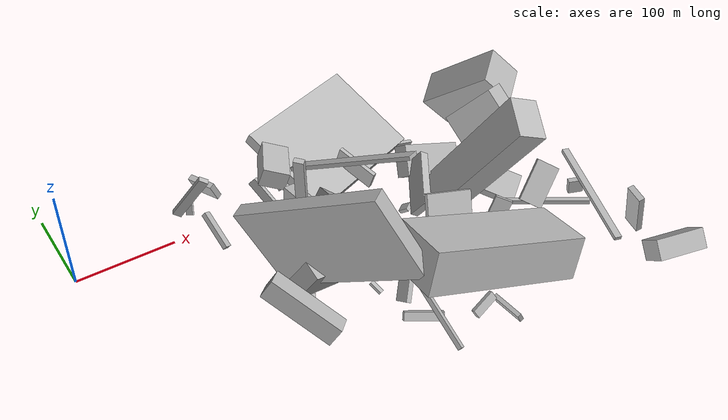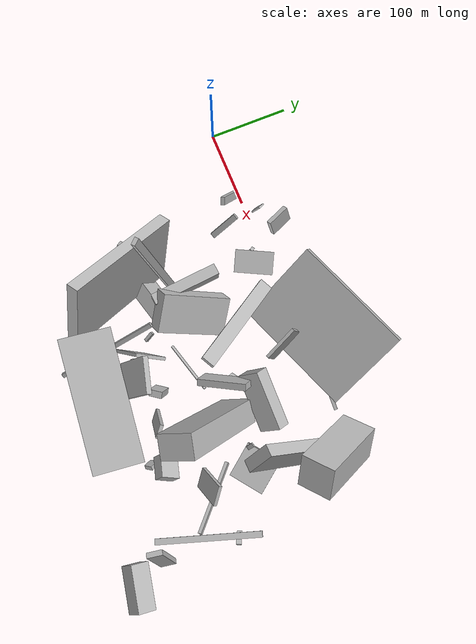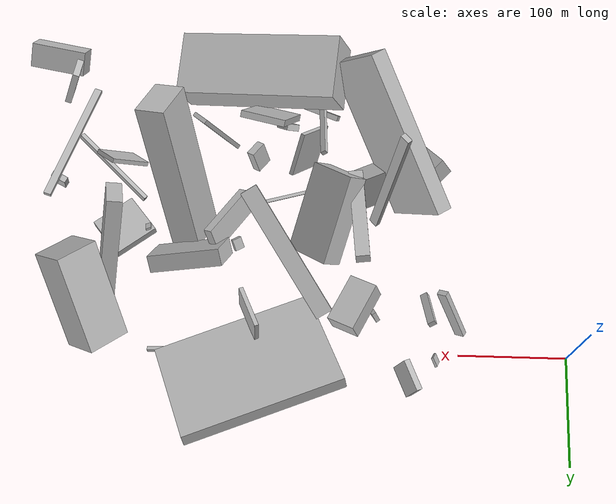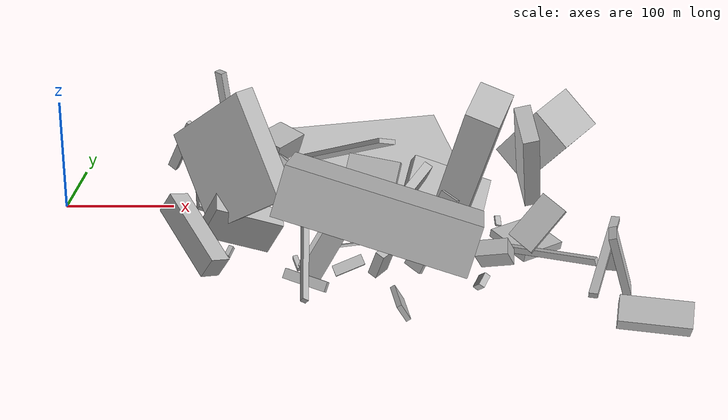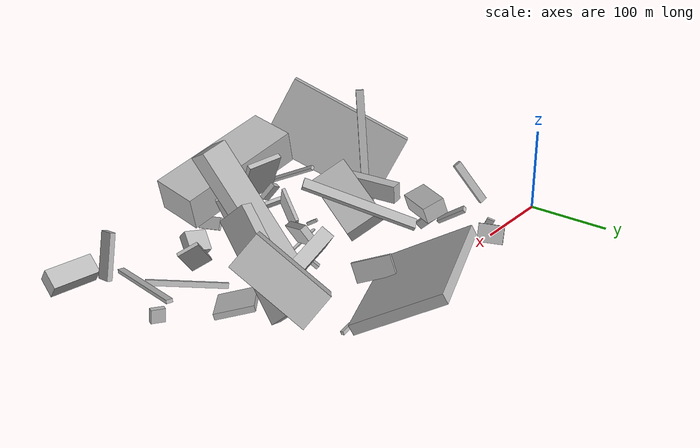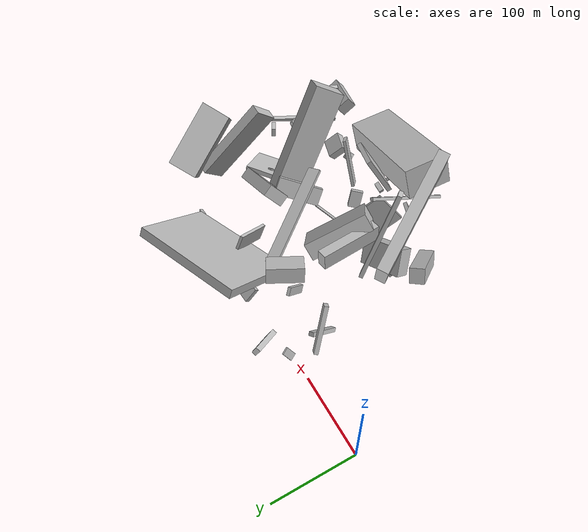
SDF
<sdf version="1.6">
 <world name="default">
  <model name="building_1">
   <static>0</static>
   <pose>241.0916509240941 -126.79172080091843 47.20947998207029 0.743622857691419 0.8195258798122124 -2.8497544787731073</pose>
   <link name="link">
    <gravity>0</gravity>
    <pose>0 0 22.5 0 0 0</pose>
    <collision name="collision"><geometry><box><size>22 82 45</size></box></geometry></collision>
    <visual name="visual">
     <cast_shadows>0</cast_shadows>
     <geometry><box><size>22 82 45</size></box></geometry>
     <material>
      <script>
       <uri>model://HANNAS_wall/materials/scripts</uri>
       <uri>model://HANNAS_wall/materials/textures</uri>
       <name>vrc/HANNAS_wall</name>
      </script>
     </material>
    </visual>
   </link>
  </model>
  <model name="building_4">
   <static>0</static>
   <pose>358.4666775041412 -253.40052799745908 62.26033274355591 1.2945197006456552 -0.1387699524928964 -1.6644033676453922</pose>
   <link name="link">
    <gravity>0</gravity>
    <pose>0 0 75.0 0 0 0</pose>
    <collision name="collision"><geometry><box><size>57 40 150</size></box></geometry></collision>
    <visual name="visual">
     <cast_shadows>0</cast_shadows>
     <geometry><box><size>57 40 150</size></box></geometry>
     <material>
      <script>
       <uri>model://HANNAS_wall/materials/scripts</uri>
       <uri>model://HANNAS_wall/materials/textures</uri>
       <name>vrc/HANNAS_wall</name>
      </script>
     </material>
    </visual>
   </link>
  </model>
  <model name="building_11">
   <static>0</static>
   <pose>401.8039499982133 -173.39935292125682 31.49054169809454 -0.6019209860752779 0.462571180728749 -0.6685917153624122</pose>
   <link name="link">
    <gravity>0</gravity>
    <pose>0 0 21.5 0 0 0</pose>
    <collision name="collision"><geometry><box><size>24 4 43</size></box></geometry></collision>
    <visual name="visual">
     <cast_shadows>0</cast_shadows>
     <geometry><box><size>24 4 43</size></box></geometry>
     <material>
      <script>
       <uri>model://HANNAS_wall/materials/scripts</uri>
       <uri>model://HANNAS_wall/materials/textures</uri>
       <name>vrc/HANNAS_wall</name>
      </script>
     </material>
    </visual>
   </link>
  </model>
  <model name="building_17">
   <static>0</static>
   <pose>232.2137951948754 -227.86231759600875 21.878663982750652 -0.32473154866761295 1.0768451253514768 -2.2833988587806293</pose>
   <link name="link">
    <gravity>0</gravity>
    <pose>0 0 2.5 0 0 0</pose>
    <collision name="collision"><geometry><box><size>8 36 5</size></box></geometry></collision>
    <visual name="visual">
     <cast_shadows>0</cast_shadows>
     <geometry><box><size>8 36 5</size></box></geometry>
     <material>
      <script>
       <uri>model://HANNAS_wall/materials/scripts</uri>
       <uri>model://HANNAS_wall/materials/textures</uri>
       <name>vrc/HANNAS_wall</name>
      </script>
     </material>
    </visual>
   </link>
  </model>
  <model name="building_18">
   <static>0</static>
   <pose>166.54839110304812 -152.57960636875353 14.710386828490366 0.1613941632235688 -0.7294529193206175 1.019425712184774</pose>
   <link name="link">
    <gravity>0</gravity>
    <pose>0 0 2.0 0 0 0</pose>
    <collision name="collision"><geometry><box><size>9 4 4</size></box></geometry></collision>
    <visual name="visual">
     <cast_shadows>0</cast_shadows>
     <geometry><box><size>9 4 4</size></box></geometry>
     <material>
      <script>
       <uri>model://HANNAS_wall/materials/scripts</uri>
       <uri>model://HANNAS_wall/materials/textures</uri>
       <name>vrc/HANNAS_wall</name>
      </script>
     </material>
    </visual>
   </link>
  </model>
  <model name="building_20">
   <static>0</static>
   <pose>172.75411120918056 -133.00806294383324 93.17697028687269 2.877991009944373 -1.365799307123116 -2.153895048102749</pose>
   <link name="link">
    <gravity>0</gravity>
    <pose>0 0 2.5 0 0 0</pose>
    <collision name="collision"><geometry><box><size>150 9 5</size></box></geometry></collision>
    <visual name="visual">
     <cast_shadows>0</cast_shadows>
     <geometry><box><size>150 9 5</size></box></geometry>
     <material>
      <script>
       <uri>model://HANNAS_wall/materials/scripts</uri>
       <uri>model://HANNAS_wall/materials/textures</uri>
       <name>vrc/HANNAS_wall</name>
      </script>
     </material>
    </visual>
   </link>
  </model>
  <model name="building_23">
   <static>0</static>
   <pose>222.28202996532096 -3.8956743131773095 34.753353518337704 1.5868055997190684 -0.5030032479727464 1.937392350581111</pose>
   <link name="link">
    <gravity>0</gravity>
    <pose>0 0 75.0 0 0 0</pose>
    <collision name="collision"><geometry><box><size>106 12 150</size></box></geometry></collision>
    <visual name="visual">
     <cast_shadows>0</cast_shadows>
     <geometry><box><size>106 12 150</size></box></geometry>
     <material>
      <script>
       <uri>model://HANNAS_wall/materials/scripts</uri>
       <uri>model://HANNAS_wall/materials/textures</uri>
       <name>vrc/HANNAS_wall</name>
      </script>
     </material>
    </visual>
   </link>
  </model>
  <model name="building_25">
   <static>0</static>
   <pose>254.02795782314413 -177.03393380565223 45.751858097996426 2.8392088810995095 -0.7404619568072064 -1.9102910947475058</pose>
   <link name="link">
    <gravity>0</gravity>
    <pose>0 0 22.5 0 0 0</pose>
    <collision name="collision"><geometry><box><size>42 4 45</size></box></geometry></collision>
    <visual name="visual">
     <cast_shadows>0</cast_shadows>
     <geometry><box><size>42 4 45</size></box></geometry>
     <material>
      <script>
       <uri>model://HANNAS_wall/materials/scripts</uri>
       <uri>model://HANNAS_wall/materials/textures</uri>
       <name>vrc/HANNAS_wall</name>
      </script>
     </material>
    </visual>
   </link>
  </model>
  <model name="building_30">
   <static>0</static>
   <pose>352.5540884524679 -161.41338525035385 78.66194120069774 -0.6372867172122165 -0.9880449328464691 -1.258235981223565</pose>
   <link name="link">
    <gravity>0</gravity>
    <pose>0 0 19.5 0 0 0</pose>
    <collision name="collision"><geometry><box><size>150 28 39</size></box></geometry></collision>
    <visual name="visual">
     <cast_shadows>0</cast_shadows>
     <geometry><box><size>150 28 39</size></box></geometry>
     <material>
      <script>
       <uri>model://HANNAS_wall/materials/scripts</uri>
       <uri>model://HANNAS_wall/materials/textures</uri>
       <name>vrc/HANNAS_wall</name>
      </script>
     </material>
    </visual>
   </link>
  </model>
  <model name="building_32">
   <static>0</static>
   <pose>420.95966662323923 -84.94178865922247 60.43215980542375 0.8211074675303445 0.20617302497976223 -3.1090380642331135</pose>
   <link name="link">
    <gravity>0</gravity>
    <pose>0 0 17.5 0 0 0</pose>
    <collision name="collision"><geometry><box><size>14 115 35</size></box></geometry></collision>
    <visual name="visual">
     <cast_shadows>0</cast_shadows>
     <geometry><box><size>14 115 35</size></box></geometry>
     <material>
      <script>
       <uri>model://HANNAS_wall/materials/scripts</uri>
       <uri>model://HANNAS_wall/materials/textures</uri>
       <name>vrc/HANNAS_wall</name>
      </script>
     </material>
    </visual>
   </link>
  </model>
  <model name="building_36">
   <static>0</static>
   <pose>344.7723852525848 -85.82009632368492 34.98490691655639 0.6406887320542455 -0.34330202802324283 -3.116895478110348</pose>
   <link name="link">
    <gravity>0</gravity>
    <pose>0 0 15.5 0 0 0</pose>
    <collision name="collision"><geometry><box><size>70 16 31</size></box></geometry></collision>
    <visual name="visual">
     <cast_shadows>0</cast_shadows>
     <geometry><box><size>70 16 31</size></box></geometry>
     <material>
      <script>
       <uri>model://HANNAS_wall/materials/scripts</uri>
       <uri>model://HANNAS_wall/materials/textures</uri>
       <name>vrc/HANNAS_wall</name>
      </script>
     </material>
    </visual>
   </link>
  </model>
  <model name="building_37">
   <static>0</static>
   <pose>147.36967346004366 -175.4206822387052 39.87576908829978 -1.318118748198189 -0.5494954403162317 2.2220988633181395</pose>
   <link name="link">
    <gravity>0</gravity>
    <pose>0 0 9.0 0 0 0</pose>
    <collision name="collision"><geometry><box><size>72 19 18</size></box></geometry></collision>
    <visual name="visual">
     <cast_shadows>0</cast_shadows>
     <geometry><box><size>72 19 18</size></box></geometry>
     <material>
      <script>
       <uri>model://HANNAS_wall/materials/scripts</uri>
       <uri>model://HANNAS_wall/materials/textures</uri>
       <name>vrc/HANNAS_wall</name>
      </script>
     </material>
    </visual>
   </link>
  </model>
  <model name="building_39">
   <static>0</static>
   <pose>306.875966251606 -257.0847921308212 10.31073312570015 0.15388736754576282 -0.5339724337595798 0.07219591271736593</pose>
   <link name="link">
    <gravity>0</gravity>
    <pose>0 0 7.5 0 0 0</pose>
    <collision name="collision"><geometry><box><size>4 29 15</size></box></geometry></collision>
    <visual name="visual">
     <cast_shadows>0</cast_shadows>
     <geometry><box><size>4 29 15</size></box></geometry>
     <material>
      <script>
       <uri>model://HANNAS_wall/materials/scripts</uri>
       <uri>model://HANNAS_wall/materials/textures</uri>
       <name>vrc/HANNAS_wall</name>
      </script>
     </material>
    </visual>
   </link>
  </model>
  <model name="building_41">
   <static>0</static>
   <pose>278.8359966370547 -197.91882227467732 79.99541068362628 1.0383896606435579 0.10825217130933673 -0.26533853469157304</pose>
   <link name="link">
    <gravity>0</gravity>
    <pose>0 0 3.0 0 0 0</pose>
    <collision name="collision"><geometry><box><size>41 60 6</size></box></geometry></collision>
    <visual name="visual">
     <cast_shadows>0</cast_shadows>
     <geometry><box><size>41 60 6</size></box></geometry>
     <material>
      <script>
       <uri>model://HANNAS_wall/materials/scripts</uri>
       <uri>model://HANNAS_wall/materials/textures</uri>
       <name>vrc/HANNAS_wall</name>
      </script>
     </material>
    </visual>
   </link>
  </model>
  <model name="building_44">
   <static>0</static>
   <pose>301.9351442187228 -46.75546142897778 20.392710485427443 1.1989342795985283 0.14700428645064403 -2.802006148436545</pose>
   <link name="link">
    <gravity>0</gravity>
    <pose>0 0 22.5 0 0 0</pose>
    <collision name="collision"><geometry><box><size>4 23 45</size></box></geometry></collision>
    <visual name="visual">
     <cast_shadows>0</cast_shadows>
     <geometry><box><size>4 23 45</size></box></geometry>
     <material>
      <script>
       <uri>model://HANNAS_wall/materials/scripts</uri>
       <uri>model://HANNAS_wall/materials/textures</uri>
       <name>vrc/HANNAS_wall</name>
      </script>
     </material>
    </visual>
   </link>
  </model>
  <model name="building_50">
   <static>0</static>
   <pose>464.64126286155783 -244.9095397115728 44.515205050815545 1.2922818838705907 -0.17346900817525696 1.4109254514971754</pose>
   <link name="link">
    <gravity>0</gravity>
    <pose>0 0 3.0 0 0 0</pose>
    <collision name="collision"><geometry><box><size>18 51 6</size></box></geometry></collision>
    <visual name="visual">
     <cast_shadows>0</cast_shadows>
     <geometry><box><size>18 51 6</size></box></geometry>
     <material>
      <script>
       <uri>model://HANNAS_wall/materials/scripts</uri>
       <uri>model://HANNAS_wall/materials/textures</uri>
       <name>vrc/HANNAS_wall</name>
      </script>
     </material>
    </visual>
   </link>
  </model>
  <model name="building_51">
   <static>0</static>
   <pose>429.20433102627374 -167.71950130565415 21.08821913895362 1.8471695355706919 -0.13456763340078798 -0.7459247431739277</pose>
   <link name="link">
    <gravity>0</gravity>
    <pose>0 0 2.0 0 0 0</pose>
    <collision name="collision"><geometry><box><size>86 6 4</size></box></geometry></collision>
    <visual name="visual">
     <cast_shadows>0</cast_shadows>
     <geometry><box><size>86 6 4</size></box></geometry>
     <material>
      <script>
       <uri>model://HANNAS_wall/materials/scripts</uri>
       <uri>model://HANNAS_wall/materials/textures</uri>
       <name>vrc/HANNAS_wall</name>
      </script>
     </material>
    </visual>
   </link>
  </model>
  <model name="building_53">
   <static>0</static>
   <pose>203.32543652585144 -145.4382600590696 30.97249290845363 0.9346104282706533 -0.9587643377372761 -0.7359608823115944</pose>
   <link name="link">
    <gravity>0</gravity>
    <pose>0 0 29.0 0 0 0</pose>
    <collision name="collision"><geometry><box><size>34 18 58</size></box></geometry></collision>
    <visual name="visual">
     <cast_shadows>0</cast_shadows>
     <geometry><box><size>34 18 58</size></box></geometry>
     <material>
      <script>
       <uri>model://HANNAS_wall/materials/scripts</uri>
       <uri>model://HANNAS_wall/materials/textures</uri>
       <name>vrc/HANNAS_wall</name>
      </script>
     </material>
    </visual>
   </link>
  </model>
  <model name="building_54">
   <static>0</static>
   <pose>450.9887812455356 -35.7184766322068 63.605488287098986 0.5012935734411316 -0.6474163289088832 -1.2074735683968052</pose>
   <link name="link">
    <gravity>0</gravity>
    <pose>0 0 20.0 0 0 0</pose>
    <collision name="collision"><geometry><box><size>90 39 40</size></box></geometry></collision>
    <visual name="visual">
     <cast_shadows>0</cast_shadows>
     <geometry><box><size>90 39 40</size></box></geometry>
     <material>
      <script>
       <uri>model://HANNAS_wall/materials/scripts</uri>
       <uri>model://HANNAS_wall/materials/textures</uri>
       <name>vrc/HANNAS_wall</name>
      </script>
     </material>
    </visual>
   </link>
  </model>
  <model name="building_58">
   <static>0</static>
   <pose>390.155040526304 -209.44246681990393 39.19762140845673 1.826163952804419 -0.7236364658055908 -2.0004751579557314</pose>
   <link name="link">
    <gravity>0</gravity>
    <pose>0 0 13.0 0 0 0</pose>
    <collision name="collision"><geometry><box><size>24 13 26</size></box></geometry></collision>
    <visual name="visual">
     <cast_shadows>0</cast_shadows>
     <geometry><box><size>24 13 26</size></box></geometry>
     <material>
      <script>
       <uri>model://HANNAS_wall/materials/scripts</uri>
       <uri>model://HANNAS_wall/materials/textures</uri>
       <name>vrc/HANNAS_wall</name>
      </script>
     </material>
    </visual>
   </link>
  </model>
  <model name="building_59">
   <static>0</static>
   <pose>165.554528659066 -180.96758055557927 98.78134703752377 1.2275736127695838 -1.0695009115556346 2.4516035722868086</pose>
   <link name="link">
    <gravity>0</gravity>
    <pose>0 0 7.0 0 0 0</pose>
    <collision name="collision"><geometry><box><size>86 150 14</size></box></geometry></collision>
    <visual name="visual">
     <cast_shadows>0</cast_shadows>
     <geometry><box><size>86 150 14</size></box></geometry>
     <material>
      <script>
       <uri>model://HANNAS_wall/materials/scripts</uri>
       <uri>model://HANNAS_wall/materials/textures</uri>
       <name>vrc/HANNAS_wall</name>
      </script>
     </material>
    </visual>
   </link>
  </model>
  <model name="building_62">
   <static>0</static>
   <pose>274.96807584200036 -265.9943412545197 54.83317999680026 -1.977334174896607 0.5031958168412397 1.5465730959121566</pose>
   <link name="link">
    <gravity>0</gravity>
    <pose>0 0 11.5 0 0 0</pose>
    <collision name="collision"><geometry><box><size>4 8 23</size></box></geometry></collision>
    <visual name="visual">
     <cast_shadows>0</cast_shadows>
     <geometry><box><size>4 8 23</size></box></geometry>
     <material>
      <script>
       <uri>model://HANNAS_wall/materials/scripts</uri>
       <uri>model://HANNAS_wall/materials/textures</uri>
       <name>vrc/HANNAS_wall</name>
      </script>
     </material>
    </visual>
   </link>
  </model>
  <model name="building_64">
   <static>0</static>
   <pose>224.69186396211842 -176.15402441559422 9.813193448002359 -1.0438552306481101 -0.14515546488405412 0.3041412732127667</pose>
   <link name="link">
    <gravity>0</gravity>
    <pose>0 0 6.5 0 0 0</pose>
    <collision name="collision"><geometry><box><size>4 4 13</size></box></geometry></collision>
    <visual name="visual">
     <cast_shadows>0</cast_shadows>
     <geometry><box><size>4 4 13</size></box></geometry>
     <material>
      <script>
       <uri>model://HANNAS_wall/materials/scripts</uri>
       <uri>model://HANNAS_wall/materials/textures</uri>
       <name>vrc/HANNAS_wall</name>
      </script>
     </material>
    </visual>
   </link>
  </model>
  <model name="building_67">
   <static>0</static>
   <pose>228.79883241764915 -222.56830623551357 58.71533889671281 2.186517972011142 -0.4679932095062374 1.5947183331059671</pose>
   <link name="link">
    <gravity>0</gravity>
    <pose>0 0 2.5 0 0 0</pose>
    <collision name="collision"><geometry><box><size>131 4 5</size></box></geometry></collision>
    <visual name="visual">
     <cast_shadows>0</cast_shadows>
     <geometry><box><size>131 4 5</size></box></geometry>
     <material>
      <script>
       <uri>model://HANNAS_wall/materials/scripts</uri>
       <uri>model://HANNAS_wall/materials/textures</uri>
       <name>vrc/HANNAS_wall</name>
      </script>
     </material>
    </visual>
   </link>
  </model>
  <model name="building_71">
   <static>0</static>
   <pose>330.1968036988453 -195.47994085437057 49.55689497154879 0.8915380532162503 -1.1391335186939078 0.006992334502852527</pose>
   <link name="link">
    <gravity>0</gravity>
    <pose>0 0 2.0 0 0 0</pose>
    <collision name="collision"><geometry><box><size>67 16 4</size></box></geometry></collision>
    <visual name="visual">
     <cast_shadows>0</cast_shadows>
     <geometry><box><size>67 16 4</size></box></geometry>
     <material>
      <script>
       <uri>model://HANNAS_wall/materials/scripts</uri>
       <uri>model://HANNAS_wall/materials/textures</uri>
       <name>vrc/HANNAS_wall</name>
      </script>
     </material>
    </visual>
   </link>
  </model>
  <model name="building_74">
   <static>0</static>
   <pose>188.69140222137554 -21.513581369356828 74.10458720812272 1.9101945912181952 -0.021617666772504103 1.0986745783191918</pose>
   <link name="link">
    <gravity>0</gravity>
    <pose>0 0 13.0 0 0 0</pose>
    <collision name="collision"><geometry><box><size>44 19 26</size></box></geometry></collision>
    <visual name="visual">
     <cast_shadows>0</cast_shadows>
     <geometry><box><size>44 19 26</size></box></geometry>
     <material>
      <script>
       <uri>model://HANNAS_wall/materials/scripts</uri>
       <uri>model://HANNAS_wall/materials/textures</uri>
       <name>vrc/HANNAS_wall</name>
      </script>
     </material>
    </visual>
   </link>
  </model>
  <model name="building_77">
   <static>0</static>
   <pose>253.69636535418607 -75.96792483671798 80.07160272130028 2.1571539125195676 -1.128843047515271 1.5498244398997585</pose>
   <link name="link">
    <gravity>0</gravity>
    <pose>0 0 8.0 0 0 0</pose>
    <collision name="collision"><geometry><box><size>4 130 16</size></box></geometry></collision>
    <visual name="visual">
     <cast_shadows>0</cast_shadows>
     <geometry><box><size>4 130 16</size></box></geometry>
     <material>
      <script>
       <uri>model://HANNAS_wall/materials/scripts</uri>
       <uri>model://HANNAS_wall/materials/textures</uri>
       <name>vrc/HANNAS_wall</name>
      </script>
     </material>
    </visual>
   </link>
  </model>
  <model name="building_79">
   <static>0</static>
   <pose>354.519049786812 4.133434508623265 11.349593220102234 -0.24568578435269803 -0.21486541041510893 3.123799538004072</pose>
   <link name="link">
    <gravity>0</gravity>
    <pose>0 0 2.0 0 0 0</pose>
    <collision name="collision"><geometry><box><size>65 4 4</size></box></geometry></collision>
    <visual name="visual">
     <cast_shadows>0</cast_shadows>
     <geometry><box><size>65 4 4</size></box></geometry>
     <material>
      <script>
       <uri>model://HANNAS_wall/materials/scripts</uri>
       <uri>model://HANNAS_wall/materials/textures</uri>
       <name>vrc/HANNAS_wall</name>
      </script>
     </material>
    </visual>
   </link>
  </model>
  <model name="building_81">
   <static>0</static>
   <pose>397.29222194222456 -125.28781472322586 11.136324886141804 -1.410290852296442 -1.3288523689142844 -1.0780219402067424</pose>
   <link name="link">
    <gravity>0</gravity>
    <pose>0 0 21.5 0 0 0</pose>
    <collision name="collision"><geometry><box><size>7 43 43</size></box></geometry></collision>
    <visual name="visual">
     <cast_shadows>0</cast_shadows>
     <geometry><box><size>7 43 43</size></box></geometry>
     <material>
      <script>
       <uri>model://HANNAS_wall/materials/scripts</uri>
       <uri>model://HANNAS_wall/materials/textures</uri>
       <name>vrc/HANNAS_wall</name>
      </script>
     </material>
    </visual>
   </link>
  </model>
  <model name="building_85">
   <static>0</static>
   <pose>267.5312618815411 -204.6588740034895 50.622454474634736 0.5197828075598211 0.48116920991888074 -3.0189763221632675</pose>
   <link name="link">
    <gravity>0</gravity>
    <pose>0 0 10.5 0 0 0</pose>
    <collision name="collision"><geometry><box><size>12 6 21</size></box></geometry></collision>
    <visual name="visual">
     <cast_shadows>0</cast_shadows>
     <geometry><box><size>12 6 21</size></box></geometry>
     <material>
      <script>
       <uri>model://HANNAS_wall/materials/scripts</uri>
       <uri>model://HANNAS_wall/materials/textures</uri>
       <name>vrc/HANNAS_wall</name>
      </script>
     </material>
    </visual>
   </link>
  </model>
  <model name="building_96">
   <static>0</static>
   <pose>182.93923392947974 -32.35481669966884 45.75785935847543 -1.7793750069859262 -0.8241929075436488 -0.855376088079651</pose>
   <link name="link">
    <gravity>0</gravity>
    <pose>0 0 2.0 0 0 0</pose>
    <collision name="collision"><geometry><box><size>10 32 4</size></box></geometry></collision>
    <visual name="visual">
     <cast_shadows>0</cast_shadows>
     <geometry><box><size>10 32 4</size></box></geometry>
     <material>
      <script>
       <uri>model://HANNAS_wall/materials/scripts</uri>
       <uri>model://HANNAS_wall/materials/textures</uri>
       <name>vrc/HANNAS_wall</name>
      </script>
     </material>
    </visual>
   </link>
  </model>
  <model name="building_99">
   <static>0</static>
   <pose>461.91031444845083 -277.83155599730645 19.20641882542729 1.6180857046291393 -0.8935508773130877 1.340458647035134</pose>
   <link name="link">
    <gravity>0</gravity>
    <pose>0 0 26.5 0 0 0</pose>
    <collision name="collision"><geometry><box><size>20 23 53</size></box></geometry></collision>
    <visual name="visual">
     <cast_shadows>0</cast_shadows>
     <geometry><box><size>20 23 53</size></box></geometry>
     <material>
      <script>
       <uri>model://HANNAS_wall/materials/scripts</uri>
       <uri>model://HANNAS_wall/materials/textures</uri>
       <name>vrc/HANNAS_wall</name>
      </script>
     </material>
    </visual>
   </link>
  </model>
  <model name="building_100">
   <static>0</static>
   <pose>466.6771054952365 -191.37443637404073 30.803758158145484 -3.1406110096169573 -0.1610438919474329 1.2629160216451212</pose>
   <link name="link">
    <gravity>0</gravity>
    <pose>0 0 2.0 0 0 0</pose>
    <collision name="collision"><geometry><box><size>122 7 4</size></box></geometry></collision>
    <visual name="visual">
     <cast_shadows>0</cast_shadows>
     <geometry><box><size>122 7 4</size></box></geometry>
     <material>
      <script>
       <uri>model://HANNAS_wall/materials/scripts</uri>
       <uri>model://HANNAS_wall/materials/textures</uri>
       <name>vrc/HANNAS_wall</name>
      </script>
     </material>
    </visual>
   </link>
  </model>
  <model name="building_101">
   <static>0</static>
   <pose>131.40087946284243 -37.266396333162916 29.375708351286473 2.49271989973548 -0.40943463815202186 -2.7041572137802077</pose>
   <link name="link">
    <gravity>0</gravity>
    <pose>0 0 2.5 0 0 0</pose>
    <collision name="collision"><geometry><box><size>7 39 5</size></box></geometry></collision>
    <visual name="visual">
     <cast_shadows>0</cast_shadows>
     <geometry><box><size>7 39 5</size></box></geometry>
     <material>
      <script>
       <uri>model://HANNAS_wall/materials/scripts</uri>
       <uri>model://HANNAS_wall/materials/textures</uri>
       <name>vrc/HANNAS_wall</name>
      </script>
     </material>
    </visual>
   </link>
  </model>
  <model name="building_104">
   <static>0</static>
   <pose>478.73251908755 -161.722172815962 11.312580706321766 -1.5418710382668763 -0.09228406875839018 -0.4582786251517459</pose>
   <link name="link">
    <gravity>0</gravity>
    <pose>0 0 3.0 0 0 0</pose>
    <collision name="collision"><geometry><box><size>15 15 6</size></box></geometry></collision>
    <visual name="visual">
     <cast_shadows>0</cast_shadows>
     <geometry><box><size>15 15 6</size></box></geometry>
     <material>
      <script>
       <uri>model://HANNAS_wall/materials/scripts</uri>
       <uri>model://HANNAS_wall/materials/textures</uri>
       <name>vrc/HANNAS_wall</name>
      </script>
     </material>
    </visual>
   </link>
  </model>
  <model name="building_106">
   <static>0</static>
   <pose>121.96279344000705 6.738802782472602 20.200740787860898 0.3629852221214459 -0.39247946438003034 -2.8183724062293494</pose>
   <link name="link">
    <gravity>0</gravity>
    <pose>0 0 8.5 0 0 0</pose>
    <collision name="collision"><geometry><box><size>2 9 17</size></box></geometry></collision>
    <visual name="visual">
     <cast_shadows>0</cast_shadows>
     <geometry><box><size>2 9 17</size></box></geometry>
     <material>
      <script>
       <uri>model://HANNAS_wall/materials/scripts</uri>
       <uri>model://HANNAS_wall/materials/textures</uri>
       <name>vrc/HANNAS_wall</name>
      </script>
     </material>
    </visual>
   </link>
  </model>
  <model name="building_107">
   <static>0</static>
   <pose>310.90413606047565 -95.24840891425771 17.87157927795451 1.8873598209052174 0.8858183517801989 -0.7648196448634372</pose>
   <link name="link">
    <gravity>0</gravity>
    <pose>0 0 4.5 0 0 0</pose>
    <collision name="collision"><geometry><box><size>4 11 9</size></box></geometry></collision>
    <visual name="visual">
     <cast_shadows>0</cast_shadows>
     <geometry><box><size>4 11 9</size></box></geometry>
     <material>
      <script>
       <uri>model://HANNAS_wall/materials/scripts</uri>
       <uri>model://HANNAS_wall/materials/textures</uri>
       <name>vrc/HANNAS_wall</name>
      </script>
     </material>
    </visual>
   </link>
  </model>
  <model name="building_108">
   <static>0</static>
   <pose>223.28245747429514 7.076983696593727 10.993565508774044 1.4907455906930034 -0.7847132879722672 1.7007040867634728</pose>
   <link name="link">
    <gravity>0</gravity>
    <pose>0 0 14.5 0 0 0</pose>
    <collision name="collision"><geometry><box><size>6 20 29</size></box></geometry></collision>
    <visual name="visual">
     <cast_shadows>0</cast_shadows>
     <geometry><box><size>6 20 29</size></box></geometry>
     <material>
      <script>
       <uri>model://HANNAS_wall/materials/scripts</uri>
       <uri>model://HANNAS_wall/materials/textures</uri>
       <name>vrc/HANNAS_wall</name>
      </script>
     </material>
    </visual>
   </link>
  </model>
  <model name="building_112">
   <static>0</static>
   <pose>317.222890561432 -115.29120702327288 61.80251756947685 2.7375057502981384 -0.49514508157168075 2.784423422435898</pose>
   <link name="link">
    <gravity>0</gravity>
    <pose>0 0 11.5 0 0 0</pose>
    <collision name="collision"><geometry><box><size>8 59 23</size></box></geometry></collision>
    <visual name="visual">
     <cast_shadows>0</cast_shadows>
     <geometry><box><size>8 59 23</size></box></geometry>
     <material>
      <script>
       <uri>model://HANNAS_wall/materials/scripts</uri>
       <uri>model://HANNAS_wall/materials/textures</uri>
       <name>vrc/HANNAS_wall</name>
      </script>
     </material>
    </visual>
   </link>
  </model>
  <model name="building_114">
   <static>0</static>
   <pose>244.82340454029756 -149.6310668347586 18.37947727778357 1.5513659689561814 0.15537737902428428 1.8419459815837433</pose>
   <link name="link">
    <gravity>0</gravity>
    <pose>0 0 32.5 0 0 0</pose>
    <collision name="collision"><geometry><box><size>3 2 65</size></box></geometry></collision>
    <visual name="visual">
     <cast_shadows>0</cast_shadows>
     <geometry><box><size>3 2 65</size></box></geometry>
     <material>
      <script>
       <uri>model://HANNAS_wall/materials/scripts</uri>
       <uri>model://HANNAS_wall/materials/textures</uri>
       <name>vrc/HANNAS_wall</name>
      </script>
     </material>
    </visual>
   </link>
  </model>
  <model name="building_119">
   <static>0</static>
   <pose>199.7477191816488 -150.70217689883046 67.79594131714113 -1.5749552729317173 0.08941119505747416 0.09397996141511732</pose>
   <link name="link">
    <gravity>0</gravity>
    <pose>0 0 40.0 0 0 0</pose>
    <collision name="collision"><geometry><box><size>13 21 80</size></box></geometry></collision>
    <visual name="visual">
     <cast_shadows>0</cast_shadows>
     <geometry><box><size>13 21 80</size></box></geometry>
     <material>
      <script>
       <uri>model://HANNAS_wall/materials/scripts</uri>
       <uri>model://HANNAS_wall/materials/textures</uri>
       <name>vrc/HANNAS_wall</name>
      </script>
     </material>
    </visual>
   </link>
  </model>
  <model name="building_122">
   <static>0</static>
   <pose>390.69473882484453 -109.36057005446408 27.76168955722313 -2.8900487872705094 -0.7178382039003811 1.6759705940582261</pose>
   <link name="link">
    <gravity>0</gravity>
    <pose>0 0 1.0 0 0 0</pose>
    <collision name="collision"><geometry><box><size>9 5 2</size></box></geometry></collision>
    <visual name="visual">
     <cast_shadows>0</cast_shadows>
     <geometry><box><size>9 5 2</size></box></geometry>
     <material>
      <script>
       <uri>model://HANNAS_wall/materials/scripts</uri>
       <uri>model://HANNAS_wall/materials/textures</uri>
       <name>vrc/HANNAS_wall</name>
      </script>
     </material>
    </visual>
   </link>
  </model>
  <model name="building_128">
   <static>0</static>
   <pose>364.48799540636514 -225.5417345715813 15.763143854899221 0.724221285492504 -0.623250552744341 3.1150636595175287</pose>
   <link name="link">
    <gravity>0</gravity>
    <pose>0 0 5.5 0 0 0</pose>
    <collision name="collision"><geometry><box><size>5 11 11</size></box></geometry></collision>
    <visual name="visual">
     <cast_shadows>0</cast_shadows>
     <geometry><box><size>5 11 11</size></box></geometry>
     <material>
      <script>
       <uri>model://HANNAS_wall/materials/scripts</uri>
       <uri>model://HANNAS_wall/materials/textures</uri>
       <name>vrc/HANNAS_wall</name>
      </script>
     </material>
    </visual>
   </link>
  </model>
  <model name="building_129">
   <static>0</static>
   <pose>117.33971857422723 -24.793240644084552 64.30357415025397 0.39842711397356206 -0.961785328754334 -0.8579485373969538</pose>
   <link name="link">
    <gravity>0</gravity>
    <pose>0 0 4.5 0 0 0</pose>
    <collision name="collision"><geometry><box><size>57 5 9</size></box></geometry></collision>
    <visual name="visual">
     <cast_shadows>0</cast_shadows>
     <geometry><box><size>57 5 9</size></box></geometry>
     <material>
      <script>
       <uri>model://HANNAS_wall/materials/scripts</uri>
       <uri>model://HANNAS_wall/materials/textures</uri>
       <name>vrc/HANNAS_wall</name>
      </script>
     </material>
    </visual>
   </link>
  </model>
  <model name="building_132">
   <static>0</static>
   <pose>295.1991613793973 -177.66466198185572 21.682957515553156 1.9265573210969043 -1.0993617043194213 -0.962272111866137</pose>
   <link name="link">
    <gravity>0</gravity>
    <pose>0 0 8.0 0 0 0</pose>
    <collision name="collision"><geometry><box><size>23 8 16</size></box></geometry></collision>
    <visual name="visual">
     <cast_shadows>0</cast_shadows>
     <geometry><box><size>23 8 16</size></box></geometry>
     <material>
      <script>
       <uri>model://HANNAS_wall/materials/scripts</uri>
       <uri>model://HANNAS_wall/materials/textures</uri>
       <name>vrc/HANNAS_wall</name>
      </script>
     </material>
    </visual>
   </link>
  </model>
  <model name="building_137">
   <static>0</static>
   <pose>154.753931841019 14.748125074483006 30.000726343830387 1.6017597426879 0.4124985819843208 -2.7200225195312213</pose>
   <link name="link">
    <gravity>0</gravity>
    <pose>0 0 14.5 0 0 0</pose>
    <collision name="collision"><geometry><box><size>6 21 29</size></box></geometry></collision>
    <visual name="visual">
     <cast_shadows>0</cast_shadows>
     <geometry><box><size>6 21 29</size></box></geometry>
     <material>
      <script>
       <uri>model://HANNAS_wall/materials/scripts</uri>
       <uri>model://HANNAS_wall/materials/textures</uri>
       <name>vrc/HANNAS_wall</name>
      </script>
     </material>
    </visual>
   </link>
  </model>
 </world>
</sdf>
